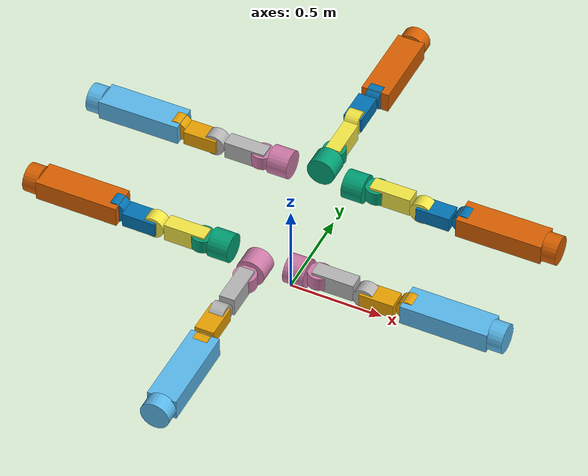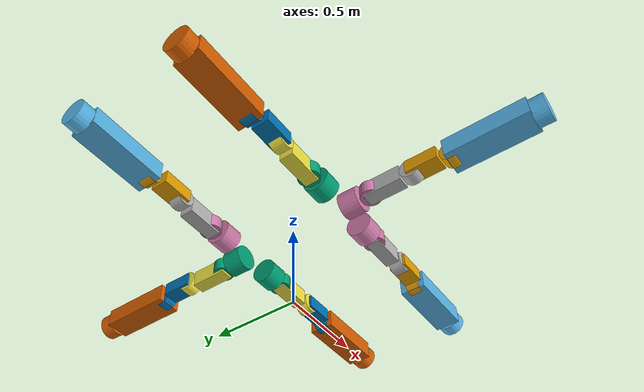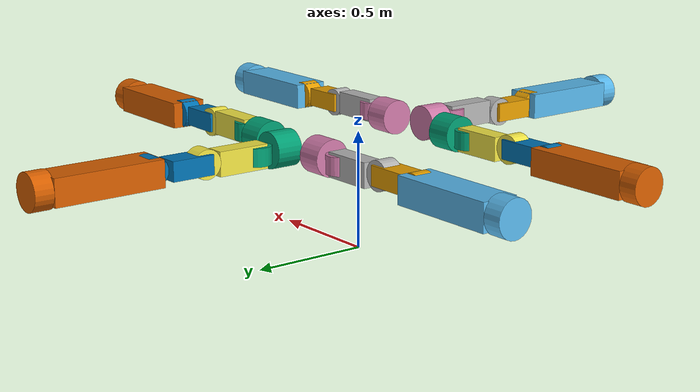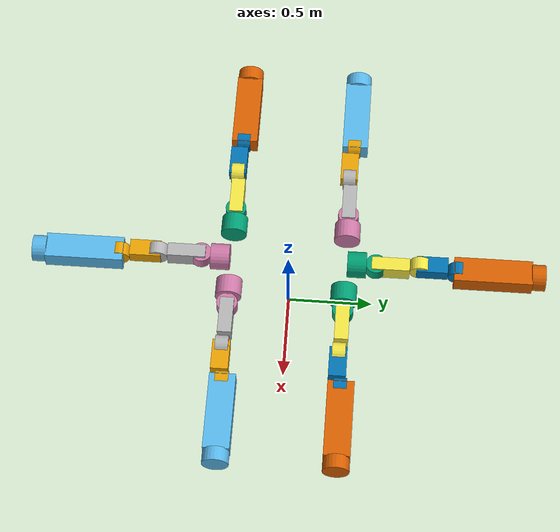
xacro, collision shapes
<?xml version="1.0"?>
<robot name="rrr_description" xmlns:xacro="http://www.ros.org/wiki/xacro">

<!-- Include xacro files -->
<xacro:include filename="robot.macro.xacro" />

<!-- |  INERTIAL PROPERTIES - LINKS  | -->

<!-- Moon Terrain -->

<xacro:moon_terrain/>

<!-- Pallet -->
<xacro:pallet name="pallet" pos_z="0.522" roll="-1.57"/>

<!-- Arm 1 -->

<!-- Link 1 -->
<xacro:link-1 name="link-1.1" roll="-1.57" inertial_z="0.0725" mass="1.59" ixx="0.010" iyy=
"0.010" izz = "0.011" base_z = "0.035" base_length = "0.11" base_radius = "0.075" motor_x = "-0.008" motor_z = "0.145" motor_pitch = "1.57" motor_length = "0.075" motor_radius = "0.06" />

<!-- Link 2 -->
<xacro:link-2 name="link-1.2" pos_x="-0.009" roll="-1.57" inertial_z = "0.1275" mass = "1.59" ixx = "0.011" iyy = "0.011" izz = "0.004" base_x = "-0.01" base_z = "0.085" box_x = "0.1" box_y = "0.08" box_z = "0.22" motor_y = "-0.008" motor_z = "0.255" motor_roll= "1.57" motor_length = "0.075" motor_radius = "0.06" />

<!-- Link 3 -->
<xacro:link-3 name="link-1.3" pos_y="-0.007" roll="-1.57" pitch="0" inertial_z = "0.11" mass = "1.59" ixx = "0.009" iyy = "0.009" izz = "0.004" base_y = "-0.01" base_z = "0.07" box_x = "0.08" box_y = "0.1" box_z = "0.18" motor_y = "0.01" motor_z = "0.22" motor_roll = "1.57" motor_length = "0.075" motor_radius = "0.06"  />

<!-- Link 4 -->
<xacro:link-4 name="link-1.4" pos_y="0.015" roll="-1.57" yaw="-1.57" inertial_y = "0.015" inertial_z = "0.2425" mass = "5.00" ixx = "0.107" iyy = "0.103" izz = "0.014" base_y = "0.015" base_z = "0.2" box_x = "0.11" box_y = "0.15" box_z = "0.45" uib_y = "0.015" uib_z = "0.46" uib_length = "0.08" uib_radius = "0.075" />

<!-- Arm 2 -->

<!-- Link 1 -->
<xacro:link-1 name="link-2.1" roll="-1.57" inertial_z="0.0725" mass="1.59" ixx="0.010" iyy=
"0.010" izz = "0.011" base_z = "0.035" base_length = "0.11" base_radius = "0.075" motor_x = "-0.008" motor_z = "0.145" motor_pitch = "1.57" motor_length = "0.075" motor_radius = "0.06" />

<!-- Link 2 -->
<xacro:link-2 name="link-2.2" pos_x="-0.009" roll="-1.57" inertial_z = "0.1275" mass = "1.59" ixx = "0.011" iyy = "0.011" izz = "0.004" base_x = "-0.01" base_z = "0.085" box_x = "0.1" box_y = "0.08" box_z = "0.22" motor_y = "-0.008" motor_z = "0.255" motor_roll= "1.57" motor_length = "0.075" motor_radius = "0.06" />

<!-- Link 3 -->
<xacro:link-3 name="link-2.3" pos_y="-0.007" roll="-1.57" pitch="0" inertial_z = "0.11" mass = "1.59" ixx = "0.009" iyy = "0.009" izz = "0.004" base_y = "-0.01" base_z = "0.07" box_x = "0.08" box_y = "0.1" box_z = "0.18" motor_y = "0.01" motor_z = "0.22" motor_roll = "1.57" motor_length = "0.075" motor_radius = "0.06"  />

<!-- Link 4 -->
<xacro:link-4 name="link-2.4" pos_y="0.015" roll="-1.57" yaw="-1.57" inertial_y = "0.015" inertial_z = "0.2425" mass = "5.00" ixx = "0.107" iyy = "0.103" izz = "0.014" base_y = "0.015" base_z = "0.2" box_x = "0.11" box_y = "0.15" box_z = "0.45" uib_y = "0.015" uib_z = "0.46" uib_length = "0.08" uib_radius = "0.075" />

<!-- Arm 3 -->

<!-- Link 1 -->
<xacro:link-1 name="link-3.1" roll="-1.57" inertial_z="0.0725" mass="1.59" ixx="0.010" iyy=
"0.010" izz = "0.011" base_z = "0.035" base_length = "0.11" base_radius = "0.075" motor_x = "-0.008" motor_z = "0.145" motor_pitch = "1.57" motor_length = "0.075" motor_radius = "0.06" />

<!-- Link 2 -->
<xacro:link-2 name="link-3.2" pos_x="-0.009" roll="-1.57" inertial_z = "0.1275" mass = "1.59" ixx = "0.011" iyy = "0.011" izz = "0.004" base_x = "-0.01" base_z = "0.085" box_x = "0.1" box_y = "0.08" box_z = "0.22" motor_y = "-0.008" motor_z = "0.255" motor_roll= "1.57" motor_length = "0.075" motor_radius = "0.06" />

<!-- Link 3 -->
<xacro:link-3 name="link-3.3" pos_y="-0.007" roll="-1.57" pitch="0" inertial_z = "0.11" mass = "1.59" ixx = "0.009" iyy = "0.009" izz = "0.004" base_y = "-0.01" base_z = "0.07" box_x = "0.08" box_y = "0.1" box_z = "0.18" motor_y = "0.01" motor_z = "0.22" motor_roll = "1.57" motor_length = "0.075" motor_radius = "0.06"  />

<!-- Link 4 -->
<xacro:link-4 name="link-3.4" pos_y="0.015" roll="-1.57" yaw="-1.57" inertial_y = "0.015" inertial_z = "0.2425" mass = "5.00" ixx = "0.107" iyy = "0.103" izz = "0.014" base_y = "0.015" base_z = "0.2" box_x = "0.11" box_y = "0.15" box_z = "0.45" uib_y = "0.015" uib_z = "0.46" uib_length = "0.08" uib_radius = "0.075" />

<!-- Arm 4 -->

<!-- Link 1 -->
<xacro:link-1 name="link-4.1" roll="-1.57" inertial_z="0.0725" mass="1.59" ixx="0.010" iyy=
"0.010" izz = "0.011" base_z = "0.035" base_length = "0.11" base_radius = "0.075" motor_x = "-0.008" motor_z = "0.145" motor_pitch = "1.57" motor_length = "0.075" motor_radius = "0.06" />

<!-- Link 2 -->
<xacro:link-2 name="link-4.2" pos_x="-0.009" roll="-1.57" inertial_z = "0.1275" mass = "1.59" ixx = "0.011" iyy = "0.011" izz = "0.004" base_x = "-0.01" base_z = "0.085" box_x = "0.1" box_y = "0.08" box_z = "0.22" motor_y = "-0.008" motor_z = "0.255" motor_roll= "1.57" motor_length = "0.075" motor_radius = "0.06" />

<!-- Link 3 -->
<xacro:link-3 name="link-4.3" pos_y="-0.007" roll="-1.57" pitch="0" inertial_z = "0.11" mass = "1.59" ixx = "0.009" iyy = "0.009" izz = "0.004" base_y = "-0.01" base_z = "0.07" box_x = "0.08" box_y = "0.1" box_z = "0.18" motor_y = "0.01" motor_z = "0.22" motor_roll = "1.57" motor_length = "0.075" motor_radius = "0.06"  />

<!-- Link 4 -->
<xacro:link-4 name="link-4.4" pos_y="0.015" roll="-1.57" yaw="-1.57" inertial_y = "0.015" inertial_z = "0.2425" mass = "5.00" ixx = "0.107" iyy = "0.103" izz = "0.014" base_y = "0.015" base_z = "0.2" box_x = "0.11" box_y = "0.15" box_z = "0.45" uib_y = "0.015" uib_z = "0.46" uib_length = "0.08" uib_radius = "0.075" />

<!-- Arm 5 -->

<!-- Link 1 -->
<xacro:link-1 name="link-5.1" roll="-1.57" inertial_z="0.0725" mass="1.59" ixx="0.010" iyy=
"0.010" izz = "0.011" base_z = "0.035" base_length = "0.11" base_radius = "0.075" motor_x = "-0.008" motor_z = "0.145" motor_pitch = "1.57" motor_length = "0.075" motor_radius = "0.06" />

<!-- Link 2 -->
<xacro:link-2 name="link-5.2" pos_x="-0.009" roll="-1.57" inertial_z = "0.1275" mass = "1.59" ixx = "0.011" iyy = "0.011" izz = "0.004" base_x = "-0.01" base_z = "0.085" box_x = "0.1" box_y = "0.08" box_z = "0.22" motor_y = "-0.008" motor_z = "0.255" motor_roll= "1.57" motor_length = "0.075" motor_radius = "0.06" />

<!-- Link 3 -->
<xacro:link-3 name="link-5.3" pos_y="-0.007" roll="-1.57" pitch="0" inertial_z = "0.11" mass = "1.59" ixx = "0.009" iyy = "0.009" izz = "0.004" base_y = "-0.01" base_z = "0.07" box_x = "0.08" box_y = "0.1" box_z = "0.18" motor_y = "0.01" motor_z = "0.22" motor_roll = "1.57" motor_length = "0.075" motor_radius = "0.06"  />

<!-- Link 4 -->
<xacro:link-4 name="link-5.4" pos_y="0.015" roll="-1.57" yaw="-1.57" inertial_y = "0.015" inertial_z = "0.2425" mass = "5.00" ixx = "0.107" iyy = "0.103" izz = "0.014" base_y = "0.015" base_z = "0.2" box_x = "0.11" box_y = "0.15" box_z = "0.45" uib_y = "0.015" uib_z = "0.46" uib_length = "0.08" uib_radius = "0.075" />

<!-- Arm 6 -->

<!-- Link 1 -->
<xacro:link-1 name="link-6.1" roll="-1.57" inertial_z="0.0725" mass="1.59" ixx="0.010" iyy="0.010" izz = "0.011" base_z = "0.035" base_length = "0.11" base_radius = "0.075" motor_x = "-0.008" motor_z = "0.145" motor_pitch = "1.57" motor_length = "0.075" motor_radius = "0.06" />

<!-- Link 2 -->
<xacro:link-2 name="link-6.2" pos_x="-0.009" roll="-1.57" inertial_z = "0.1275" mass = "1.59" ixx = "0.011" iyy = "0.011" izz = "0.004" base_x = "-0.01" base_z = "0.085" box_x = "0.1" box_y = "0.08" box_z = "0.22" motor_y = "-0.008" motor_z = "0.255" motor_roll= "1.57" motor_length = "0.075" motor_radius = "0.06" />

<!-- Link 3 -->
<xacro:link-3 name="link-6.3" pos_y="-0.007" roll="-1.57" pitch="0" inertial_z = "0.11" mass = "1.59" ixx = "0.009" iyy = "0.009" izz = "0.004" base_y = "-0.01" base_z = "0.07" box_x = "0.08" box_y = "0.1" box_z = "0.18" motor_y = "0.01" motor_z = "0.22" motor_roll = "1.57" motor_length = "0.075" motor_radius = "0.06"  />

<!-- Link 4 -->
<xacro:link-4 name="link-6.4" pos_y="0.015" roll="-1.57" yaw="-1.57" inertial_y = "0.015" inertial_z = "0.2425" mass = "5.00" ixx = "0.107" iyy = "0.103" izz = "0.014" base_y = "0.015" base_z = "0.2" box_x = "0.11" box_y = "0.15" box_z = "0.45" uib_y = "0.015" uib_z = "0.46" uib_length = "0.08" uib_radius = "0.075" />

<!-- | KINEMATIC PROPERTIES - JOINTS | -->

<!-- Pallet to Moon -->
<xacro:fixed_joint name="pallet-moon" parent="moon_terrain" child="pallet" pos_x = "0" pos_y = "0" pos_z="0" roll = "0" pitch = "0"/>

<!-- Arm 1 -->

<!-- Link1_Joint REVOLUTE-->
<xacro:revolute_joint name="joint-1.1" parent="link-1.1" child="link-1.2" axis="x"  pos_z="0.145" lower = "-1.57" upper = "1.57" effort = "120" velocity = "5.02654824" />

<!-- Link2_Joint REVOLUTE-->
<xacro:revolute_joint name="joint-1.2" parent="link-1.2" child="link-1.3" axis="y" pos_z="0.255" lower = "-2.094" upper = "2.094" effort = "120" velocity = "5.02654824"/>

<!-- Link3_Joint REVOLUTE-->
<xacro:revolute_joint name="joint-1.3" parent="link-1.3" child="link-1.4" axis="y" pos_z="0.22" lower = "-2.094" upper = "2.094" effort = "120" velocity = "5.02654824"/>

<!-- Pallet_Joint FIXED-->
<xacro:fixed_joint name="pallet-joint1" parent="pallet" child="link-1.1" pos_x = "0.17" pos_y = "0.330" pos_z="0.487" roll = "0" pitch = "1.57"/>

<!-- Arm 2 -->

<!-- Link1_Joint REVOLUTE-->
<xacro:revolute_joint name="joint-2.1" parent="link-2.1" child="link-2.2" axis="x"  pos_z="0.145" lower = "-1.57" upper = "1.57" effort = "120" velocity = "5.02654824" />

<!-- Link2_Joint REVOLUTE-->
<xacro:revolute_joint name="joint-2.2" parent="link-2.2" child="link-2.3" axis="y" pos_z="0.255" lower = "-2.094" upper = "2.094" effort = "120" velocity = "5.02654824"/>

<!-- Link3_Joint REVOLUTE-->
<xacro:revolute_joint name="joint-2.3" parent="link-2.3" child="link-2.4" axis="y" pos_z="0.22" lower = "-2.094" upper = "2.094" effort = "120" velocity = "5.02654824"/>

<!-- Pallet_Joint FIXED-->
<xacro:fixed_joint name="pallet-joint2" parent="pallet" child="link-2.1" pos_x = "0.17" pos_y = "-0.330" pos_z="0.487" roll = "0" pitch = "1.57"/>

<!-- Arm 3 -->

<!-- Link1_Joint REVOLUTE-->
<xacro:revolute_joint name="joint-3.1" parent="link-3.1" child="link-3.2" axis="x"  pos_z="0.145" lower = "-1.57" upper = "1.57" effort = "120" velocity = "5.02654824" />

<!-- Link2_Joint REVOLUTE-->
<xacro:revolute_joint name="joint-3.2" parent="link-3.2" child="link-3.3" axis="y" pos_z="0.255" lower = "-2.094" upper = "2.094" effort = "120" velocity = "5.02654824"/>

<!-- Link3_Joint REVOLUTE-->
<xacro:revolute_joint name="joint-3.3" parent="link-3.3" child="link-3.4" axis="y" pos_z="0.22" lower = "-2.094" upper = "2.094" effort = "120" velocity = "5.02654824"/>

<!-- Pallet_Joint FIXED-->
<xacro:fixed_joint name="pallet-joint3" parent="pallet" child="link-3.1" pos_x = "-0.17" pos_y = "-0.330" pos_z="0.487" roll = "0" pitch = "-1.57" />

<!-- Arm 4 -->

<!-- Link1_Joint REVOLUTE-->
<xacro:revolute_joint name="joint-4.1" parent="link-4.1" child="link-4.2" axis="x"  pos_z="0.145" lower = "-1.57" upper = "1.57" effort = "120" velocity = "5.02654824" />

<!-- Link2_Joint REVOLUTE-->
<xacro:revolute_joint name="joint-4.2" parent="link-4.2" child="link-4.3" axis="y" pos_z="0.255" lower = "-2.094" upper = "2.094" effort = "120" velocity = "5.02654824"/>

<!-- Link3_Joint REVOLUTE-->
<xacro:revolute_joint name="joint-4.3" parent="link-4.3" child="link-4.4" axis="y" pos_z="0.22" lower = "-2.094" upper = "2.094" effort = "120" velocity = "5.02654824"/>

<!-- Pallet_Joint FIXED-->
<xacro:fixed_joint name="pallet-joint4" parent="pallet" child="link-4.1" pos_x = "-0.17" pos_y = "0.330" pos_z="0.487" roll = "0" pitch = "-1.57"/>

<!-- Arm 5 -->

<!-- Link1_Joint REVOLUTE-->
<xacro:revolute_joint name="joint-5.1" parent="link-5.1" child="link-5.2" axis="x"  pos_z="0.145" lower = "-1.57" upper = "1.57" effort = "120" velocity = "5.02654824" />

<!-- Link2_Joint REVOLUTE-->
<xacro:revolute_joint name="joint-5.2" parent="link-5.2" child="link-5.3" axis="y" pos_z="0.255" lower = "-2.094" upper = "2.094" effort = "120" velocity = "5.02654824"/>

<!-- Link3_Joint REVOLUTE-->
<xacro:revolute_joint name="joint-5.3" parent="link-5.3" child="link-5.4" axis="y" pos_z="0.22" lower = "-2.094" upper = "2.094" effort = "120" velocity = "5.02654824"/>

<!-- Pallet_Joint FIXED-->
<xacro:fixed_joint name="pallet-joint5" parent="pallet" child="link-5.1" pos_x = "0" pos_y = "0.360" pos_z="0.487" roll = "-1.57" pitch = "-1.57"/>

<!-- Arm 6 -->

<!-- Link1_Joint REVOLUTE-->
<xacro:revolute_joint name="joint-6.1" parent="link-6.1" child="link-6.2" axis="x"  pos_z="0.145" lower = "-1.57" upper = "1.57" effort = "120" velocity = "5.02654824" />

<!-- Link2_Joint REVOLUTE-->
<xacro:revolute_joint name="joint-6.2" parent="link-6.2" child="link-6.3" axis="y" pos_z="0.255" lower = "-2.094" upper = "2.094" effort = "120" velocity = "5.02654824"/>

<!-- Link3_Joint REVOLUTE-->
<xacro:revolute_joint name="joint-6.3" parent="link-6.3" child="link-6.4" axis="y" pos_z="0.22" lower = "-2.094" upper = "2.094" effort = "120" velocity = "5.02654824"/>

<!-- Pallet_Joint FIXED-->
<xacro:fixed_joint name="pallet-joint6" parent="pallet" child="link-6.1" pos_x = "0" pos_y = "-0.360" pos_z="0.487" roll = "1.57" pitch = "1.57"/>

<!-- | TRANSMISSIONS  | -->

<!-- Use the macro to create transmissions for the joints and actuators -->

<!-- Transmissions for Arm 1 -->
<xacro:create_transmission transmission_name="tran-1.1" joint_name="joint-1.1" actuator_name="motor-1.1" />
<xacro:create_transmission transmission_name="tran-1.2" joint_name="joint-1.2" actuator_name="motor-1.2" />
<xacro:create_transmission transmission_name="tran-1.3" joint_name="joint-1.3" actuator_name="motor-1.3" />

<!-- Transmissions for Arm 2 -->
<xacro:create_transmission transmission_name="tran-2.1" joint_name="joint-2.1" actuator_name="motor-2.1" />
<xacro:create_transmission transmission_name="tran-2.2" joint_name="joint-2.2" actuator_name="motor-2.2" />
<xacro:create_transmission transmission_name="tran-2.3" joint_name="joint-2.3" actuator_name="motor-2.3" />

<!-- Transmissions for Arm 3 -->
<xacro:create_transmission transmission_name="tran-3.1" joint_name="joint-3.1" actuator_name="motor-3.1" />
<xacro:create_transmission transmission_name="tran-3.2" joint_name="joint-3.2" actuator_name="motor-3.2" />
<xacro:create_transmission transmission_name="tran-3.3" joint_name="joint-3.3" actuator_name="motor-3.3" />

<!-- Transmissions for Arm 4 -->
<xacro:create_transmission transmission_name="tran-4.1" joint_name="joint-4.1" actuator_name="motor-4.1" />
<xacro:create_transmission transmission_name="tran-4.2" joint_name="joint-4.2" actuator_name="motor-4.2" />
<xacro:create_transmission transmission_name="tran-4.3" joint_name="joint-4.3" actuator_name="motor-4.3" />

<!-- Transmissions for Arm 5 -->
<xacro:create_transmission transmission_name="tran-5.1" joint_name="joint-5.1" actuator_name="motor-5.1" />
<xacro:create_transmission transmission_name="tran-5.2" joint_name="joint-5.2" actuator_name="motor-5.2" />
<xacro:create_transmission transmission_name="tran-5.3" joint_name="joint-5.3" actuator_name="motor-5.3" />

<!-- Transmissions for Arm 6 -->
<xacro:create_transmission transmission_name="tran-6.1" joint_name="joint-6.1" actuator_name="motor-6.1" />
<xacro:create_transmission transmission_name="tran-6.2" joint_name="joint-6.2" actuator_name="motor-6.2" />
<xacro:create_transmission transmission_name="tran-6.3" joint_name="joint-6.3" actuator_name="motor-6.3" />

</robot>

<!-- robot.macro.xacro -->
<robot xmlns:drake="http://drake.mit.edu" xmlns:xacro="http://www.ros.org/wiki/xacro">

<!--     LINK MACROS    -->

<xacro:macro name="moon_terrain">
    <link name="moon_terrain">
        <visual>
            <origin xyz="0 0 0" rpy="0 0 0"/>
            <geometry>
                <mesh filename="../Meshes/3d-model.obj"/>
            </geometry>
        </visual>
    </link>
</xacro:macro>

<xacro:macro name="link-1" params="name roll inertial_z mass ixx iyy izz base_z base_length base_radius motor_x motor_z motor_pitch motor_length motor_radius ">
    <link name="${name}">
        <inertial>
            <origin xyz="0 0 ${inertial_z}" rpy="0 0 0"/>
            <mass value="${mass}"/>
            <inertia ixx="${ixx}" ixy="0" ixz="0" iyy="${iyy}" iyz="0" izz="${izz}"/>
        </inertial>
        <visual>
            <origin xyz="0 0 0" rpy="${roll} 0 0"/>
            <geometry>
                <mesh filename="../Meshes/link-1.gltf"/>
            </geometry>
        </visual>
        <collision name="link-1-base-collision">
            <origin xyz="0 0 ${base_z}" rpy="0 0 0"/>
            <geometry>
                <cylinder length="${base_length}" radius="${base_radius}"/>
            </geometry>
        </collision>
        <collision name="link-1-motor-collision">
            <origin xyz="${motor_x} 0 ${motor_z}" rpy="0 ${motor_pitch} 0"/>
            <geometry>
            <cylinder length="${motor_length}" radius="${motor_radius}"/>
        </geometry>
    </collision>
    </link>
</xacro:macro>

<xacro:macro name="link-2" params="name pos_x roll inertial_z mass ixx iyy izz base_x base_z box_x box_y box_z motor_y motor_z motor_roll motor_length motor_radius ">
    <link name="${name}">
        <inertial>
            <origin xyz="0 0 ${inertial_z}" rpy="0 0 0"/>
            <mass value="${mass}"/>
            <inertia ixx="${ixx}" ixy="0" ixz="0" iyy="${iyy}" iyz="0" izz="${izz}"/>
        </inertial>

        <visual>
            <origin xyz="${pos_x} 0 0" rpy="${roll} 0 0"/>
            <geometry>
                <mesh filename="../Meshes/link-2.gltf"/>
            </geometry>
        </visual>

        <collision name="link-2-base-collision">
            <origin xyz="${base_x} 0 ${base_z}" rpy="0 0 0"/>
            <geometry>
                <box size="${box_x} ${box_y} ${box_z}"/>
            </geometry>
        </collision>

        <collision name="link-2-motor-collision">
            <origin xyz="0 ${motor_y} ${motor_z}" rpy="${motor_roll} 0 0"/>
            <geometry>
                <cylinder length="${motor_length}" radius="${motor_radius}"/>
            </geometry>
        </collision>
    </link>
</xacro:macro>

<xacro:macro name="link-3" params="name pos_y roll pitch mass inertial_z ixx iyy izz base_y base_z box_x box_y box_z motor_y motor_z motor_roll motor_length motor_radius">
    <link name="${name}">
        <inertial>
            <origin xyz="0 0 ${inertial_z}" rpy="0 0 0"/>
            <mass value="${mass}"/>
            <inertia ixx="${ixx}" ixy="0" ixz="0" iyy="${iyy}" iyz="0" izz="${izz}"/>
        </inertial>

        <visual>
            <origin xyz="0.0 ${pos_y} 0.0 " rpy="${roll} ${pitch} 0"/>
            <geometry>
                <mesh filename="../Meshes/link-3.gltf"/>
            </geometry>
        </visual>

        <collision name="link-3-base-collision">
            <origin xyz="0 ${base_y} ${base_z}" rpy="0 0 0"/>
            <geometry>
                <box size="${box_x} ${box_y} ${box_z}"/>
            </geometry>
        </collision>

        <collision name="link-3-motor-collision">
            <origin xyz="0 ${motor_y} ${motor_z}" rpy="${motor_roll} 0 0"/>
            <geometry>
                <cylinder length="${motor_length}" radius="${motor_radius}"/>
            </geometry>
        </collision>
    </link>
</xacro:macro>

<xacro:macro name="link-4" params="name pos_y roll yaw inertial_y inertial_z mass ixx iyy izz base_y base_z box_x box_y box_z uib_y uib_z uib_length uib_radius">
    <link name="${name}">
        <inertial>
            <origin xyz="0 ${inertial_y} ${inertial_z}" rpy="0 0 0"/>
            <mass value="${mass}"/>
            <inertia ixx="${ixx}" ixy="0" ixz="0" iyy="${iyy}" iyz="0" izz="${izz}"/>
        </inertial>

        <visual>
            <origin xyz="0 ${pos_y} 0 " rpy="${roll} 0 ${yaw}"/>
            <geometry>
                <mesh filename="../Meshes/link-4.gltf"/>
            </geometry>
        </visual>

        <collision name="link-3-base-collision">
            <origin xyz="0 ${base_y} ${base_z}" rpy="0 0 0"/>
            <geometry>
                <box size="${box_x} ${box_y} ${box_z}"/>
            </geometry>
        </collision>

        <collision name="link-1-uib-collision">
            <origin xyz="0 ${uib_y} ${uib_z}" rpy="0 0 0"/>
            <geometry>
                <cylinder length="${uib_length}" radius="${uib_radius}"/>
            </geometry>
        </collision>
    </link>
</xacro:macro>

<xacro:macro name="pallet" params="name pos_z roll">
    <link name="${name}">
        <visual>
            <origin xyz="0 0 ${pos_z}" rpy="${roll} 0 0"/>
            <geometry>
                <mesh filename="../Meshes/pallet.gltf"/>
            </geometry>
        </visual>
    </link>
</xacro:macro>

<!--     JOINT MACROS   -->

<xacro:macro name="fixed_joint" params="name parent child pos_x pos_y pos_z roll pitch">
    <joint name="${name}" type="fixed">
        <parent link="${parent}"/>
        <child link="${child}"/>
        <origin rpy="${roll} ${pitch} 0" xyz="${pos_x} ${pos_y} ${pos_z}"/>
        </joint>
</xacro:macro>

<xacro:macro name="revolute_joint" params="name parent child axis pos_z lower upper effort velocity">
    <joint name="${name}" type="revolute">
        <parent link="${parent}"/>
        <child link="${child}"/>

        <xacro:if value="${axis == 'x'}">
            <axis xyz="1 0 0"/>
        </xacro:if>
        <xacro:if value="${axis == 'y'}">
            <axis xyz="0 1 0"/>
        </xacro:if>
        <xacro:if value="${axis == 'z'}">
            <axis xyz="0 0 1"/>
        </xacro:if>

        <origin rpy="0 0 0" xyz="0 0 ${pos_z}"/>
        <limit effort="${effort}" lower="${lower}" upper="${upper}" velocity="${velocity}"/>
        <dynamics damping="0.8487"/>
    </joint>
</xacro:macro>

<!-- Define a macro for transmissions -->
<xacro:macro name="create_transmission" params="transmission_name joint_name actuator_name">
    <transmission name="${transmission_name}">
        <robotNamespace>/3DOF-WORM</robotNamespace>
        <type>transmission_interface/SimpleTransmission</type>
        <joint name="${joint_name}">
            <hardwareInterface>PositionJointInterface</hardwareInterface>
        </joint>
        <actuator name="${actuator_name}">
            <hardwareInterface>PositionJointInterface</hardwareInterface>
            <mechanicalReduction>1</mechanicalReduction>
            <drake:gear_ratio value="64.0" />
            <drake:rotor_inertia value="0.00005645" />
        </actuator>
    </transmission>
</xacro:macro>

</robot>
